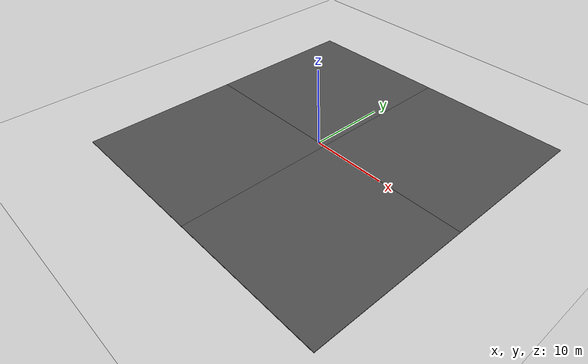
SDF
<sdf version="1.4">
 <world name="default">
  <physics name="default_physics" default="0" type="ode">
   <max_step_size>0.001</max_step_size>
   <real_time_factor>1</real_time_factor>
   <real_time_update_rate>1000</real_time_update_rate>
   <gravity>0 0 0</gravity>
  </physics>
  <scene><ambient>0.4 0.4 0.4 1</ambient><background>0.7 0.7 0.7 1</background><shadows>0</shadows></scene>
  <include><uri>model://sun</uri></include>
  <include><uri>model://ground_plane</uri></include>
  <model name="asphalt_plane">
   <static>1</static>
   <link name="link">
    <collision name="collision">
     <geometry><box><size>20 20 0.1</size></box></geometry>
     <surface><contact><collide_without_contact>true</collide_without_contact></contact></surface>
    </collision>
    <visual name="visual">
     <cast_shadows>0</cast_shadows>
     <geometry><box><size>20 20 0.1</size></box></geometry>
     <material>
      <script>
       <uri>model://asphalt_plane/materials/scripts</uri>
       <uri>model://asphalt_plane/materials/textures</uri>
       <name>vrc/asphalt</name>
      </script>
     </material>
    </visual>
   </link>
   <pose>-9 -10 0 0 -0 0</pose>
  </model>
  <model name="asphalt_plane_0">
   <static>1</static>
   <link name="link">
    <collision name="collision">
     <geometry><box><size>20 20 0.1</size></box></geometry>
     <surface><contact><collide_without_contact>true</collide_without_contact></contact></surface>
    </collision>
    <visual name="visual">
     <cast_shadows>0</cast_shadows>
     <geometry><box><size>20 20 0.1</size></box></geometry>
     <material>
      <script>
       <uri>model://asphalt_plane/materials/scripts</uri>
       <uri>model://asphalt_plane/materials/textures</uri>
       <name>vrc/asphalt</name>
      </script>
     </material>
    </visual>
   </link>
   <pose>-9 10 0 0 -0 0</pose>
  </model>
  <model name="asphalt_plane_1">
   <static>1</static>
   <link name="link">
    <collision name="collision">
     <geometry><box><size>20 20 0.1</size></box></geometry>
     <surface><contact><collide_without_contact>true</collide_without_contact></contact></surface>
    </collision>
    <visual name="visual">
     <cast_shadows>0</cast_shadows>
     <geometry><box><size>20 20 0.1</size></box></geometry>
     <material>
      <script>
       <uri>model://asphalt_plane/materials/scripts</uri>
       <uri>model://asphalt_plane/materials/textures</uri>
       <name>vrc/asphalt</name>
      </script>
     </material>
    </visual>
   </link>
   <pose>11 10 0 0 -0 0</pose>
  </model>
  <model name="asphalt_plane_2">
   <static>1</static>
   <link name="link">
    <collision name="collision">
     <geometry><box><size>20 20 0.1</size></box></geometry>
     <surface><contact><collide_without_contact>true</collide_without_contact></contact></surface>
    </collision>
    <visual name="visual">
     <cast_shadows>0</cast_shadows>
     <geometry><box><size>20 20 0.1</size></box></geometry>
     <material>
      <script>
       <uri>model://asphalt_plane/materials/scripts</uri>
       <uri>model://asphalt_plane/materials/textures</uri>
       <name>vrc/asphalt</name>
      </script>
     </material>
    </visual>
   </link>
   <pose>11 -10 0 0 -0 0</pose>
  </model>
 </world>
</sdf>
